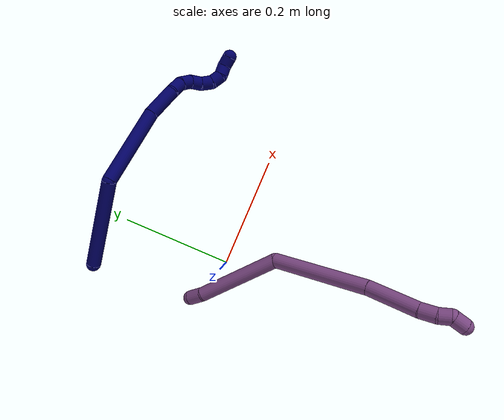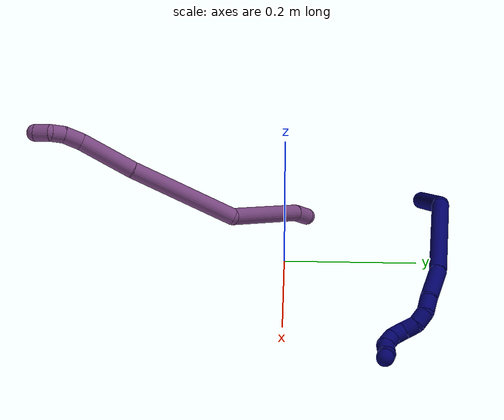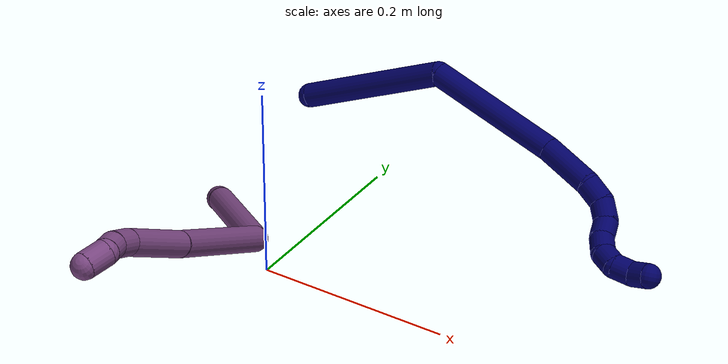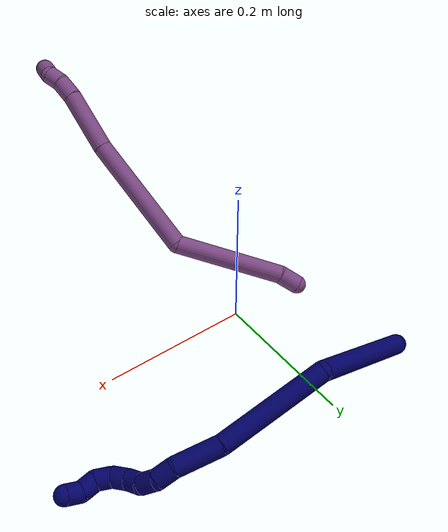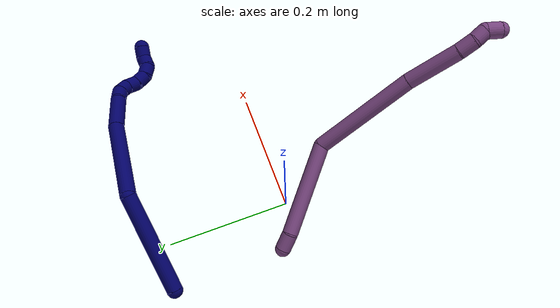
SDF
<sdf version="1.7">
 <world name="default">
  <model name="7">
   <static>0</static>
   <link name="7">
    <collision name="collision-cylinder-e_1_1_4">
     <pose>0.064213 -0.039997 0.023723 1.03545 0.944017 0.565901</pose>
     <geometry><cylinder><radius>0.0125</radius><length>0.158567</length></cylinder></geometry>
     <surface>
      <friction><ode><mu>1.16</mu><mu2>1.16</mu2><slip1>0</slip1><slip2>0</slip2></ode></friction>
      <contact><ode><kp>1e+06</kp><kd>1</kd><max_vel>0</max_vel><min_depth>0.001</min_depth></ode></contact>
     </surface>
    </collision>
    <visual name="visual-cylinder-e_1_1_4">
     <pose>0.064213 -0.039997 0.023723 1.03545 0.944017 0.565901</pose>
     <geometry><cylinder><radius>0.0125</radius><length>0.158567</length></cylinder></geometry>
     <material><ambient>0.003922 0 0.403922 1</ambient></material>
    </visual>
    <collision name="collision-cylinder-e_2_4_5">
     <pose>0.189731 -0.101289 0.021593 2.45255 1.07076 2.0535</pose>
     <geometry><cylinder><radius>0.0125</radius><length>0.139715</length></cylinder></geometry>
     <surface>
      <friction><ode><mu>1.16</mu><mu2>1.16</mu2><slip1>0</slip1><slip2>0</slip2></ode></friction>
      <contact><ode><kp>1e+06</kp><kd>1</kd><max_vel>0</max_vel><min_depth>0.001</min_depth></ode></contact>
     </surface>
    </collision>
    <visual name="visual-cylinder-e_2_4_5">
     <pose>0.189731 -0.101289 0.021593 2.45255 1.07076 2.0535</pose>
     <geometry><cylinder><radius>0.0125</radius><length>0.139715</length></cylinder></geometry>
     <material><ambient>0.003922 0 0.403922 1</ambient></material>
    </visual>
    <collision name="collision-cylinder-e_3_5_6">
     <pose>0.272873 -0.135607 -0.016841 2.33901 0.878487 1.67257</pose>
     <geometry><cylinder><radius>0.0125</radius><length>0.056737</length></cylinder></geometry>
     <surface>
      <friction><ode><mu>1.16</mu><mu2>1.16</mu2><slip1>0</slip1><slip2>0</slip2></ode></friction>
      <contact><ode><kp>1e+06</kp><kd>1</kd><max_vel>0</max_vel><min_depth>0.001</min_depth></ode></contact>
     </surface>
    </collision>
    <visual name="visual-cylinder-e_3_5_6">
     <pose>0.272873 -0.135607 -0.016841 2.33901 0.878487 1.67257</pose>
     <geometry><cylinder><radius>0.0125</radius><length>0.056737</length></cylinder></geometry>
     <material><ambient>0.003922 0 0.403922 1</ambient></material>
    </visual>
    <collision name="collision-cylinder-e_4_6_7">
     <pose>0.303373 -0.151594 -0.03687 2.76267 0.824236 2.31483</pose>
     <geometry><cylinder><radius>0.0125</radius><length>0.023602</length></cylinder></geometry>
     <surface>
      <friction><ode><mu>1.16</mu><mu2>1.16</mu2><slip1>0</slip1><slip2>0</slip2></ode></friction>
      <contact><ode><kp>1e+06</kp><kd>1</kd><max_vel>0</max_vel><min_depth>0.001</min_depth></ode></contact>
     </surface>
    </collision>
    <visual name="visual-cylinder-e_4_6_7">
     <pose>0.303373 -0.151594 -0.03687 2.76267 0.824236 2.31483</pose>
     <geometry><cylinder><radius>0.0125</radius><length>0.023602</length></cylinder></geometry>
     <material><ambient>0.003922 0 0.403922 1</ambient></material>
    </visual>
    <collision name="collision-cylinder-e_5_7_8">
     <pose>0.315917 -0.158525 -0.053405 2.73014 0.373073 1.4705</pose>
     <geometry><cylinder><radius>0.0125</radius><length>0.0213</length></cylinder></geometry>
     <surface>
      <friction><ode><mu>1.16</mu><mu2>1.16</mu2><slip1>0</slip1><slip2>0</slip2></ode></friction>
      <contact><ode><kp>1e+06</kp><kd>1</kd><max_vel>0</max_vel><min_depth>0.001</min_depth></ode></contact>
     </surface>
    </collision>
    <visual name="visual-cylinder-e_5_7_8">
     <pose>0.315917 -0.158525 -0.053405 2.73014 0.373073 1.4705</pose>
     <geometry><cylinder><radius>0.0125</radius><length>0.0213</length></cylinder></geometry>
     <material><ambient>0.003922 0 0.403922 1</ambient></material>
    </visual>
    <collision name="collision-cylinder-e_6_8_9">
     <pose>0.319178 -0.168175 -0.070702 2.53592 -0.062074 -0.198085</pose>
     <geometry><cylinder><radius>0.0125</radius><length>0.020006</length></cylinder></geometry>
     <surface>
      <friction><ode><mu>1.16</mu><mu2>1.16</mu2><slip1>0</slip1><slip2>0</slip2></ode></friction>
      <contact><ode><kp>1e+06</kp><kd>1</kd><max_vel>0</max_vel><min_depth>0.001</min_depth></ode></contact>
     </surface>
    </collision>
    <visual name="visual-cylinder-e_6_8_9">
     <pose>0.319178 -0.168175 -0.070702 2.53592 -0.062074 -0.198085</pose>
     <geometry><cylinder><radius>0.0125</radius><length>0.020006</length></cylinder></geometry>
     <material><ambient>0.003922 0 0.403922 1</ambient></material>
    </visual>
    <collision name="collision-cylinder-e_7_9_10">
     <pose>0.320504 -0.181068 -0.085588 2.31792 0.195486 0.441632</pose>
     <geometry><cylinder><radius>0.0125</radius><length>0.020036</length></cylinder></geometry>
     <surface>
      <friction><ode><mu>1.16</mu><mu2>1.16</mu2><slip1>0</slip1><slip2>0</slip2></ode></friction>
      <contact><ode><kp>1e+06</kp><kd>1</kd><max_vel>0</max_vel><min_depth>0.001</min_depth></ode></contact>
     </surface>
    </collision>
    <visual name="visual-cylinder-e_7_9_10">
     <pose>0.320504 -0.181068 -0.085588 2.31792 0.195486 0.441632</pose>
     <geometry><cylinder><radius>0.0125</radius><length>0.020036</length></cylinder></geometry>
     <material><ambient>0.003922 0 0.403922 1</ambient></material>
    </visual>
    <collision name="collision-cylinder-e_8_10_11">
     <pose>0.328549 -0.194736 -0.096889 2.19206 0.654917 1.168</pose>
     <geometry><cylinder><radius>0.0125</radius><length>0.020029</length></cylinder></geometry>
     <surface>
      <friction><ode><mu>1.16</mu><mu2>1.16</mu2><slip1>0</slip1><slip2>0</slip2></ode></friction>
      <contact><ode><kp>1e+06</kp><kd>1</kd><max_vel>0</max_vel><min_depth>0.001</min_depth></ode></contact>
     </surface>
    </collision>
    <visual name="visual-cylinder-e_8_10_11">
     <pose>0.328549 -0.194736 -0.096889 2.19206 0.654917 1.168</pose>
     <geometry><cylinder><radius>0.0125</radius><length>0.020029</length></cylinder></geometry>
     <material><ambient>0.003922 0 0.403922 1</ambient></material>
    </visual>
    <collision name="collision-cylinder-e_9_11_12">
     <pose>0.344078 -0.203929 -0.103416 2.17918 1.23108 1.86962</pose>
     <geometry><cylinder><radius>0.0125</radius><length>0.020001</length></cylinder></geometry>
     <surface>
      <friction><ode><mu>1.16</mu><mu2>1.16</mu2><slip1>0</slip1><slip2>0</slip2></ode></friction>
      <contact><ode><kp>1e+06</kp><kd>1</kd><max_vel>0</max_vel><min_depth>0.001</min_depth></ode></contact>
     </surface>
    </collision>
    <visual name="visual-cylinder-e_9_11_12">
     <pose>0.344078 -0.203929 -0.103416 2.17918 1.23108 1.86962</pose>
     <geometry><cylinder><radius>0.0125</radius><length>0.020001</length></cylinder></geometry>
     <material><ambient>0.003922 0 0.403922 1</ambient></material>
    </visual>
    <collision name="collision-cylinder-e_10_12_2">
     <pose>0.360944 -0.213309 -0.104548 1.45504 0.838202 0.75531</pose>
     <geometry><cylinder><radius>0.0125</radius><length>0.020008</length></cylinder></geometry>
     <surface>
      <friction><ode><mu>1.16</mu><mu2>1.16</mu2><slip1>0</slip1><slip2>0</slip2></ode></friction>
      <contact><ode><kp>1e+06</kp><kd>1</kd><max_vel>0</max_vel><min_depth>0.001</min_depth></ode></contact>
     </surface>
    </collision>
    <visual name="visual-cylinder-e_10_12_2">
     <pose>0.360944 -0.213309 -0.104548 1.45504 0.838202 0.75531</pose>
     <geometry><cylinder><radius>0.0125</radius><length>0.020008</length></cylinder></geometry>
     <material><ambient>0.003922 0 0.403922 1</ambient></material>
    </visual>
    <collision name="collision-sphere-2">
     <pose>0.368381 -0.219955 -0.103776 0 -0 0</pose>
     <geometry><sphere><radius>0.0125</radius></sphere></geometry>
     <surface>
      <friction><ode><mu>1.16</mu><mu2>1.16</mu2><slip1>0</slip1><slip2>0</slip2></ode></friction>
      <contact><ode><kp>1e+06</kp><kd>1</kd><max_vel>0</max_vel><min_depth>0.001</min_depth></ode></contact>
     </surface>
    </collision>
    <visual name="visual-sphere-2">
     <pose>0.368381 -0.219955 -0.103776 0 -0 0</pose>
     <geometry><sphere><radius>0.0125</radius></sphere></geometry>
     <material><ambient>0.003922 0 0.403922 1</ambient></material>
    </visual>
    <collision name="collision-sphere-12">
     <pose>0.353507 -0.206664 -0.105321 0 -0 0</pose>
     <geometry><sphere><radius>0.0125</radius></sphere></geometry>
     <surface>
      <friction><ode><mu>1.16</mu><mu2>1.16</mu2><slip1>0</slip1><slip2>0</slip2></ode></friction>
      <contact><ode><kp>1e+06</kp><kd>1</kd><max_vel>0</max_vel><min_depth>0.001</min_depth></ode></contact>
     </surface>
    </collision>
    <visual name="visual-sphere-12">
     <pose>0.353507 -0.206664 -0.105321 0 -0 0</pose>
     <geometry><sphere><radius>0.0125</radius></sphere></geometry>
     <material><ambient>0.003922 0 0.403922 1</ambient></material>
    </visual>
    <collision name="collision-sphere-11">
     <pose>0.334649 -0.201195 -0.101512 0 -0 0</pose>
     <geometry><sphere><radius>0.0125</radius></sphere></geometry>
     <surface>
      <friction><ode><mu>1.16</mu><mu2>1.16</mu2><slip1>0</slip1><slip2>0</slip2></ode></friction>
      <contact><ode><kp>1e+06</kp><kd>1</kd><max_vel>0</max_vel><min_depth>0.001</min_depth></ode></contact>
     </surface>
    </collision>
    <visual name="visual-sphere-11">
     <pose>0.334649 -0.201195 -0.101512 0 -0 0</pose>
     <geometry><sphere><radius>0.0125</radius></sphere></geometry>
     <material><ambient>0.003922 0 0.403922 1</ambient></material>
    </visual>
    <collision name="collision-sphere-10">
     <pose>0.322449 -0.188278 -0.092266 0 -0 0</pose>
     <geometry><sphere><radius>0.0125</radius></sphere></geometry>
     <surface>
      <friction><ode><mu>1.16</mu><mu2>1.16</mu2><slip1>0</slip1><slip2>0</slip2></ode></friction>
      <contact><ode><kp>1e+06</kp><kd>1</kd><max_vel>0</max_vel><min_depth>0.001</min_depth></ode></contact>
     </surface>
    </collision>
    <visual name="visual-sphere-10">
     <pose>0.322449 -0.188278 -0.092266 0 -0 0</pose>
     <geometry><sphere><radius>0.0125</radius></sphere></geometry>
     <material><ambient>0.003922 0 0.403922 1</ambient></material>
    </visual>
    <collision name="collision-sphere-9">
     <pose>0.318558 -0.173859 -0.07891 0 -0 0</pose>
     <geometry><sphere><radius>0.0125</radius></sphere></geometry>
     <surface>
      <friction><ode><mu>1.16</mu><mu2>1.16</mu2><slip1>0</slip1><slip2>0</slip2></ode></friction>
      <contact><ode><kp>1e+06</kp><kd>1</kd><max_vel>0</max_vel><min_depth>0.001</min_depth></ode></contact>
     </surface>
    </collision>
    <visual name="visual-sphere-9">
     <pose>0.318558 -0.173859 -0.07891 0 -0 0</pose>
     <geometry><sphere><radius>0.0125</radius></sphere></geometry>
     <material><ambient>0.003922 0 0.403922 1</ambient></material>
    </visual>
    <collision name="collision-sphere-4">
     <pose>0.128426 -0.079993 0.047445 0 -0 0</pose>
     <geometry><sphere><radius>0.0125</radius></sphere></geometry>
     <surface>
      <friction><ode><mu>1.16</mu><mu2>1.16</mu2><slip1>0</slip1><slip2>0</slip2></ode></friction>
      <contact><ode><kp>1e+06</kp><kd>1</kd><max_vel>0</max_vel><min_depth>0.001</min_depth></ode></contact>
     </surface>
    </collision>
    <visual name="visual-sphere-4">
     <pose>0.128426 -0.079993 0.047445 0 -0 0</pose>
     <geometry><sphere><radius>0.0125</radius></sphere></geometry>
     <material><ambient>0.003922 0 0.403922 1</ambient></material>
    </visual>
    <collision name="collision-sphere-1">
     <geometry><sphere><radius>0.0125</radius></sphere></geometry>
     <surface>
      <friction><ode><mu>1.16</mu><mu2>1.16</mu2><slip1>0</slip1><slip2>0</slip2></ode></friction>
      <contact><ode><kp>1e+06</kp><kd>1</kd><max_vel>0</max_vel><min_depth>0.001</min_depth></ode></contact>
     </surface>
    </collision>
    <visual name="visual-sphere-1">
     <geometry><sphere><radius>0.0125</radius></sphere></geometry>
     <material><ambient>0.003922 0 0.403922 1</ambient></material>
    </visual>
    <collision name="collision-sphere-8">
     <pose>0.319799 -0.162491 -0.062495 0 -0 0</pose>
     <geometry><sphere><radius>0.0125</radius></sphere></geometry>
     <surface>
      <friction><ode><mu>1.16</mu><mu2>1.16</mu2><slip1>0</slip1><slip2>0</slip2></ode></friction>
      <contact><ode><kp>1e+06</kp><kd>1</kd><max_vel>0</max_vel><min_depth>0.001</min_depth></ode></contact>
     </surface>
    </collision>
    <visual name="visual-sphere-8">
     <pose>0.319799 -0.162491 -0.062495 0 -0 0</pose>
     <geometry><sphere><radius>0.0125</radius></sphere></geometry>
     <material><ambient>0.003922 0 0.403922 1</ambient></material>
    </visual>
    <collision name="collision-sphere-5">
     <pose>0.251036 -0.122584 -0.004259 0 -0 0</pose>
     <geometry><sphere><radius>0.0125</radius></sphere></geometry>
     <surface>
      <friction><ode><mu>1.16</mu><mu2>1.16</mu2><slip1>0</slip1><slip2>0</slip2></ode></friction>
      <contact><ode><kp>1e+06</kp><kd>1</kd><max_vel>0</max_vel><min_depth>0.001</min_depth></ode></contact>
     </surface>
    </collision>
    <visual name="visual-sphere-5">
     <pose>0.251036 -0.122584 -0.004259 0 -0 0</pose>
     <geometry><sphere><radius>0.0125</radius></sphere></geometry>
     <material><ambient>0.003922 0 0.403922 1</ambient></material>
    </visual>
    <collision name="collision-sphere-6">
     <pose>0.294711 -0.148629 -0.029424 0 -0 0</pose>
     <geometry><sphere><radius>0.0125</radius></sphere></geometry>
     <surface>
      <friction><ode><mu>1.16</mu><mu2>1.16</mu2><slip1>0</slip1><slip2>0</slip2></ode></friction>
      <contact><ode><kp>1e+06</kp><kd>1</kd><max_vel>0</max_vel><min_depth>0.001</min_depth></ode></contact>
     </surface>
    </collision>
    <visual name="visual-sphere-6">
     <pose>0.294711 -0.148629 -0.029424 0 -0 0</pose>
     <geometry><sphere><radius>0.0125</radius></sphere></geometry>
     <material><ambient>0.003922 0 0.403922 1</ambient></material>
    </visual>
    <collision name="collision-sphere-7">
     <pose>0.312035 -0.154558 -0.044316 0 -0 0</pose>
     <geometry><sphere><radius>0.0125</radius></sphere></geometry>
     <surface>
      <friction><ode><mu>1.16</mu><mu2>1.16</mu2><slip1>0</slip1><slip2>0</slip2></ode></friction>
      <contact><ode><kp>1e+06</kp><kd>1</kd><max_vel>0</max_vel><min_depth>0.001</min_depth></ode></contact>
     </surface>
    </collision>
    <visual name="visual-sphere-7">
     <pose>0.312035 -0.154558 -0.044316 0 -0 0</pose>
     <geometry><sphere><radius>0.0125</radius></sphere></geometry>
     <material><ambient>0.003922 0 0.403922 1</ambient></material>
    </visual>
    <inertial>
     <pose>0.199105 -0.108763 -0.01083 0 -0 0</pose>
     <mass>0.5</mass>
     <inertia>
      <ixx>0.000368</ixx>
      <ixy>0</ixy>
      <ixz>0</ixz>
      <iyy>0.000688</iyy>
      <iyz>0</iyz>
      <izz>-0.000251</izz>
     </inertia>
    </inertial>
   </link>
   <pose>-0.088333 0.209916 0.063829 -0.560238 0.142084 0.422997</pose>
  </model>
  <model name="20">
   <static>0</static>
   <link name="20">
    <collision name="collision-cylinder-e_1_1_4">
     <pose>0.00727 -0.000259 0.011694 0.022157 0.556111 0.006325</pose>
     <geometry><cylinder><radius>0.0125</radius><length>0.027544</length></cylinder></geometry>
     <surface>
      <friction><ode><mu>1.16</mu><mu2>1.16</mu2><slip1>0</slip1><slip2>0</slip2></ode></friction>
      <contact><ode><kp>1e+06</kp><kd>1</kd><max_vel>0</max_vel><min_depth>0.001</min_depth></ode></contact>
     </surface>
    </collision>
    <visual name="visual-cylinder-e_1_1_4">
     <pose>0.00727 -0.000259 0.011694 0.022157 0.556111 0.006325</pose>
     <geometry><cylinder><radius>0.0125</radius><length>0.027544</length></cylinder></geometry>
     <material><ambient>0.478431 0.278431 0.509804 1</ambient></material>
    </visual>
    <collision name="collision-cylinder-e_2_4_5">
     <pose>0.067538 -0.004145 0.074521 0.070809 0.802052 0.030033</pose>
     <geometry><cylinder><radius>0.0125</radius><length>0.147466</length></cylinder></geometry>
     <surface>
      <friction><ode><mu>1.16</mu><mu2>1.16</mu2><slip1>0</slip1><slip2>0</slip2></ode></friction>
      <contact><ode><kp>1e+06</kp><kd>1</kd><max_vel>0</max_vel><min_depth>0.001</min_depth></ode></contact>
     </surface>
    </collision>
    <visual name="visual-cylinder-e_2_4_5">
     <pose>0.067538 -0.004145 0.074521 0.070809 0.802052 0.030033</pose>
     <geometry><cylinder><radius>0.0125</radius><length>0.147466</length></cylinder></geometry>
     <material><ambient>0.478431 0.278431 0.509804 1</ambient></material>
    </visual>
    <collision name="collision-cylinder-e_3_5_6">
     <pose>0.134602 -0.037376 0.203238 0.364521 0.167788 0.030995</pose>
     <geometry><cylinder><radius>0.0125</radius><length>0.168446</length></cylinder></geometry>
     <surface>
      <friction><ode><mu>1.16</mu><mu2>1.16</mu2><slip1>0</slip1><slip2>0</slip2></ode></friction>
      <contact><ode><kp>1e+06</kp><kd>1</kd><max_vel>0</max_vel><min_depth>0.001</min_depth></ode></contact>
     </surface>
    </collision>
    <visual name="visual-cylinder-e_3_5_6">
     <pose>0.134602 -0.037376 0.203238 0.364521 0.167788 0.030995</pose>
     <geometry><cylinder><radius>0.0125</radius><length>0.168446</length></cylinder></geometry>
     <material><ambient>0.478431 0.278431 0.509804 1</ambient></material>
    </visual>
    <collision name="collision-cylinder-e_4_6_7">
     <pose>0.150886 -0.083584 0.320118 0.399788 0.051967 0.010531</pose>
     <geometry><cylinder><radius>0.0125</radius><length>0.085433</length></cylinder></geometry>
     <surface>
      <friction><ode><mu>1.16</mu><mu2>1.16</mu2><slip1>0</slip1><slip2>0</slip2></ode></friction>
      <contact><ode><kp>1e+06</kp><kd>1</kd><max_vel>0</max_vel><min_depth>0.001</min_depth></ode></contact>
     </surface>
    </collision>
    <visual name="visual-cylinder-e_4_6_7">
     <pose>0.150886 -0.083584 0.320118 0.399788 0.051967 0.010531</pose>
     <geometry><cylinder><radius>0.0125</radius><length>0.085433</length></cylinder></geometry>
     <material><ambient>0.478431 0.278431 0.509804 1</ambient></material>
    </visual>
    <collision name="collision-cylinder-e_5_7_8">
     <pose>0.155715 -0.10561 0.371613 0.418269 0.193038 0.041092</pose>
     <geometry><cylinder><radius>0.0125</radius><length>0.027206</length></cylinder></geometry>
     <surface>
      <friction><ode><mu>1.16</mu><mu2>1.16</mu2><slip1>0</slip1><slip2>0</slip2></ode></friction>
      <contact><ode><kp>1e+06</kp><kd>1</kd><max_vel>0</max_vel><min_depth>0.001</min_depth></ode></contact>
     </surface>
    </collision>
    <visual name="visual-cylinder-e_5_7_8">
     <pose>0.155715 -0.10561 0.371613 0.418269 0.193038 0.041092</pose>
     <geometry><cylinder><radius>0.0125</radius><length>0.027206</length></cylinder></geometry>
     <material><ambient>0.478431 0.278431 0.509804 1</ambient></material>
    </visual>
    <collision name="collision-cylinder-e_6_8_9">
     <pose>0.162714 -0.115393 0.391781 0.500685 0.450145 0.116955</pose>
     <geometry><cylinder><radius>0.0125</radius><length>0.020177</length></cylinder></geometry>
     <surface>
      <friction><ode><mu>1.16</mu><mu2>1.16</mu2><slip1>0</slip1><slip2>0</slip2></ode></friction>
      <contact><ode><kp>1e+06</kp><kd>1</kd><max_vel>0</max_vel><min_depth>0.001</min_depth></ode></contact>
     </surface>
    </collision>
    <visual name="visual-cylinder-e_6_8_9">
     <pose>0.162714 -0.115393 0.391781 0.500685 0.450145 0.116955</pose>
     <geometry><cylinder><radius>0.0125</radius><length>0.020177</length></cylinder></geometry>
     <material><ambient>0.478431 0.278431 0.509804 1</ambient></material>
    </visual>
    <collision name="collision-cylinder-e_7_9_2">
     <pose>0.167924 -0.130208 0.405297 1.08291 0.069239 0.041652</pose>
     <geometry><cylinder><radius>0.0125</radius><length>0.023726</length></cylinder></geometry>
     <surface>
      <friction><ode><mu>1.16</mu><mu2>1.16</mu2><slip1>0</slip1><slip2>0</slip2></ode></friction>
      <contact><ode><kp>1e+06</kp><kd>1</kd><max_vel>0</max_vel><min_depth>0.001</min_depth></ode></contact>
     </surface>
    </collision>
    <visual name="visual-cylinder-e_7_9_2">
     <pose>0.167924 -0.130208 0.405297 1.08291 0.069239 0.041652</pose>
     <geometry><cylinder><radius>0.0125</radius><length>0.023726</length></cylinder></geometry>
     <material><ambient>0.478431 0.278431 0.509804 1</ambient></material>
    </visual>
    <collision name="collision-sphere-2">
     <pose>0.168745 -0.140662 0.410845 0 -0 0</pose>
     <geometry><sphere><radius>0.0125</radius></sphere></geometry>
     <surface>
      <friction><ode><mu>1.16</mu><mu2>1.16</mu2><slip1>0</slip1><slip2>0</slip2></ode></friction>
      <contact><ode><kp>1e+06</kp><kd>1</kd><max_vel>0</max_vel><min_depth>0.001</min_depth></ode></contact>
     </surface>
    </collision>
    <visual name="visual-sphere-2">
     <pose>0.168745 -0.140662 0.410845 0 -0 0</pose>
     <geometry><sphere><radius>0.0125</radius></sphere></geometry>
     <material><ambient>0.478431 0.278431 0.509804 1</ambient></material>
    </visual>
    <collision name="collision-sphere-9">
     <pose>0.167103 -0.119754 0.39975 0 -0 0</pose>
     <geometry><sphere><radius>0.0125</radius></sphere></geometry>
     <surface>
      <friction><ode><mu>1.16</mu><mu2>1.16</mu2><slip1>0</slip1><slip2>0</slip2></ode></friction>
      <contact><ode><kp>1e+06</kp><kd>1</kd><max_vel>0</max_vel><min_depth>0.001</min_depth></ode></contact>
     </surface>
    </collision>
    <visual name="visual-sphere-9">
     <pose>0.167103 -0.119754 0.39975 0 -0 0</pose>
     <geometry><sphere><radius>0.0125</radius></sphere></geometry>
     <material><ambient>0.478431 0.278431 0.509804 1</ambient></material>
    </visual>
    <collision name="collision-sphere-4">
     <pose>0.01454 -0.000518 0.023388 0 -0 0</pose>
     <geometry><sphere><radius>0.0125</radius></sphere></geometry>
     <surface>
      <friction><ode><mu>1.16</mu><mu2>1.16</mu2><slip1>0</slip1><slip2>0</slip2></ode></friction>
      <contact><ode><kp>1e+06</kp><kd>1</kd><max_vel>0</max_vel><min_depth>0.001</min_depth></ode></contact>
     </surface>
    </collision>
    <visual name="visual-sphere-4">
     <pose>0.01454 -0.000518 0.023388 0 -0 0</pose>
     <geometry><sphere><radius>0.0125</radius></sphere></geometry>
     <material><ambient>0.478431 0.278431 0.509804 1</ambient></material>
    </visual>
    <collision name="collision-sphere-1">
     <geometry><sphere><radius>0.0125</radius></sphere></geometry>
     <surface>
      <friction><ode><mu>1.16</mu><mu2>1.16</mu2><slip1>0</slip1><slip2>0</slip2></ode></friction>
      <contact><ode><kp>1e+06</kp><kd>1</kd><max_vel>0</max_vel><min_depth>0.001</min_depth></ode></contact>
     </surface>
    </collision>
    <visual name="visual-sphere-1">
     <geometry><sphere><radius>0.0125</radius></sphere></geometry>
     <material><ambient>0.478431 0.278431 0.509804 1</ambient></material>
    </visual>
    <collision name="collision-sphere-8">
     <pose>0.158324 -0.111033 0.383812 0 -0 0</pose>
     <geometry><sphere><radius>0.0125</radius></sphere></geometry>
     <surface>
      <friction><ode><mu>1.16</mu><mu2>1.16</mu2><slip1>0</slip1><slip2>0</slip2></ode></friction>
      <contact><ode><kp>1e+06</kp><kd>1</kd><max_vel>0</max_vel><min_depth>0.001</min_depth></ode></contact>
     </surface>
    </collision>
    <visual name="visual-sphere-8">
     <pose>0.158324 -0.111033 0.383812 0 -0 0</pose>
     <geometry><sphere><radius>0.0125</radius></sphere></geometry>
     <material><ambient>0.478431 0.278431 0.509804 1</ambient></material>
    </visual>
    <collision name="collision-sphere-5">
     <pose>0.120536 -0.007772 0.125654 0 -0 0</pose>
     <geometry><sphere><radius>0.0125</radius></sphere></geometry>
     <surface>
      <friction><ode><mu>1.16</mu><mu2>1.16</mu2><slip1>0</slip1><slip2>0</slip2></ode></friction>
      <contact><ode><kp>1e+06</kp><kd>1</kd><max_vel>0</max_vel><min_depth>0.001</min_depth></ode></contact>
     </surface>
    </collision>
    <visual name="visual-sphere-5">
     <pose>0.120536 -0.007772 0.125654 0 -0 0</pose>
     <geometry><sphere><radius>0.0125</radius></sphere></geometry>
     <material><ambient>0.478431 0.278431 0.509804 1</ambient></material>
    </visual>
    <collision name="collision-sphere-6">
     <pose>0.148667 -0.06698 0.280823 0 -0 0</pose>
     <geometry><sphere><radius>0.0125</radius></sphere></geometry>
     <surface>
      <friction><ode><mu>1.16</mu><mu2>1.16</mu2><slip1>0</slip1><slip2>0</slip2></ode></friction>
      <contact><ode><kp>1e+06</kp><kd>1</kd><max_vel>0</max_vel><min_depth>0.001</min_depth></ode></contact>
     </surface>
    </collision>
    <visual name="visual-sphere-6">
     <pose>0.148667 -0.06698 0.280823 0 -0 0</pose>
     <geometry><sphere><radius>0.0125</radius></sphere></geometry>
     <material><ambient>0.478431 0.278431 0.509804 1</ambient></material>
    </visual>
    <collision name="collision-sphere-7">
     <pose>0.153105 -0.100188 0.359413 0 -0 0</pose>
     <geometry><sphere><radius>0.0125</radius></sphere></geometry>
     <surface>
      <friction><ode><mu>1.16</mu><mu2>1.16</mu2><slip1>0</slip1><slip2>0</slip2></ode></friction>
      <contact><ode><kp>1e+06</kp><kd>1</kd><max_vel>0</max_vel><min_depth>0.001</min_depth></ode></contact>
     </surface>
    </collision>
    <visual name="visual-sphere-7">
     <pose>0.153105 -0.100188 0.359413 0 -0 0</pose>
     <geometry><sphere><radius>0.0125</radius></sphere></geometry>
     <material><ambient>0.478431 0.278431 0.509804 1</ambient></material>
    </visual>
    <inertial>
     <pose>0.114455 -0.044692 0.201053 0 -0 0</pose>
     <mass>0.5</mass>
     <inertia>
      <ixx>0.000685</ixx>
      <ixy>0</ixy>
      <ixz>0</ixz>
      <iyy>0.000718</iyy>
      <iyz>0</iyz>
      <izz>-5.7e-05</izz>
     </inertia>
    </inertial>
   </link>
   <pose>-0.079249 0.033314 0.037336 0.580308 0.312378 -0.260044</pose>
  </model>
 </world>
</sdf>
